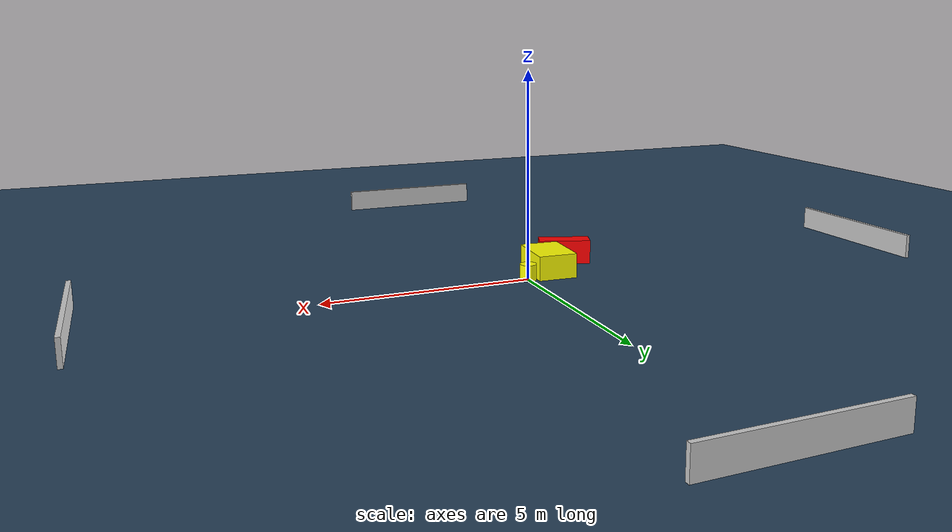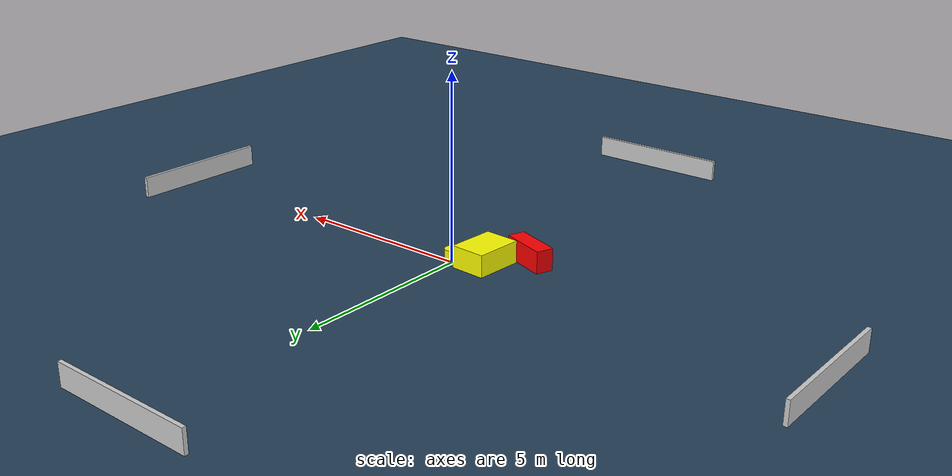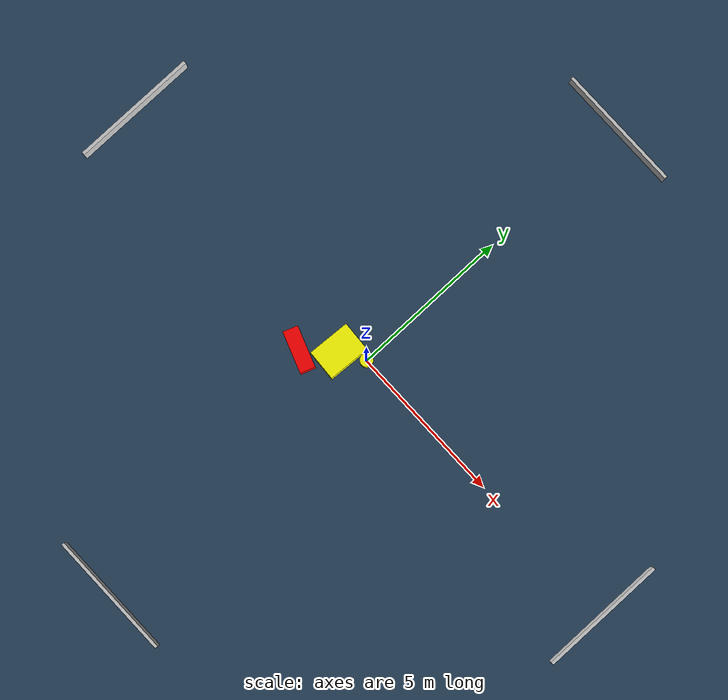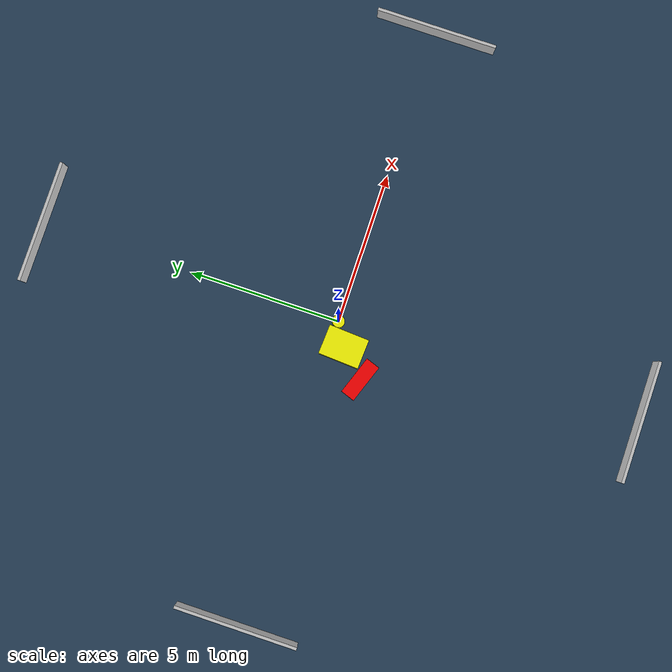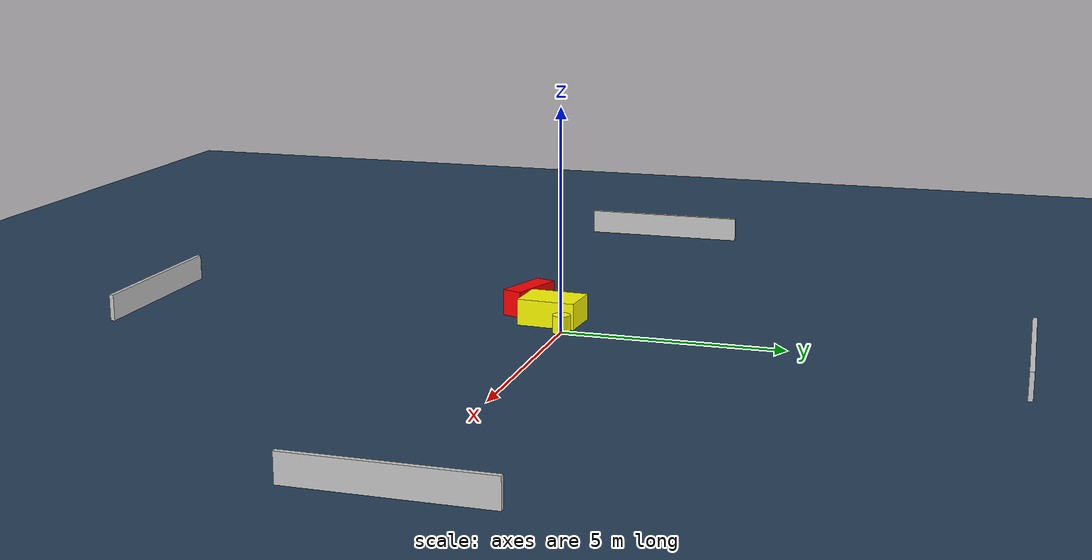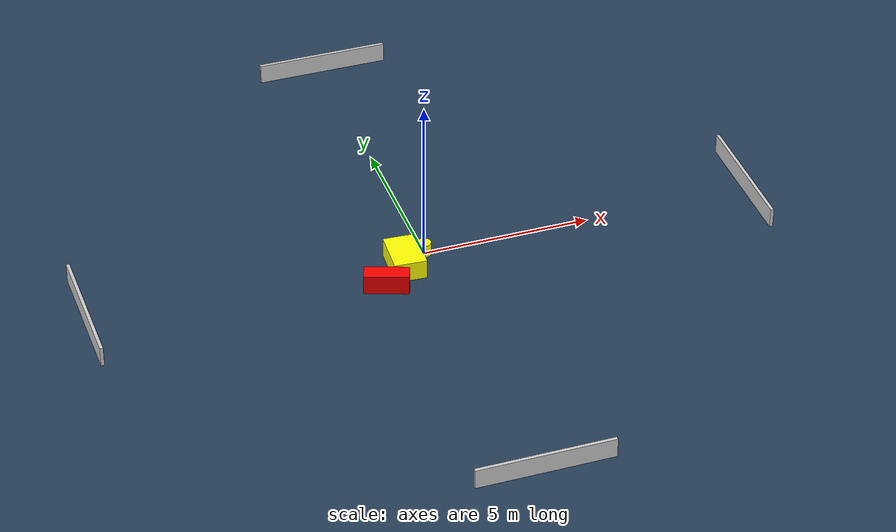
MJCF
<?xml version="1.0" ?>
<mujoco model="generated_environment">
  <option timestep="0.01" integrator="RK4" cone="elliptic"/>
  <default>
    <geom density="1"/>
  </default>
  <asset>
    <texture builtin="gradient" height="3072" name="skybox" rgb1="0.3 0.5 0.7" rgb2="0 0 0" type="skybox" width="512"/>
    <texture builtin="checker" height="300" name="groundplane" rgb1="0.2 0.3 0.4" rgb2="0.1 0.2 0.3" type="2d" width="300"/>
    <material name="groundplane" reflectance="0.2" texrepeat="5 5" texture="groundplane"/>
  </asset>
  <worldbody>
    <light dir="0 0 -1" directional="true" pos="0 0 1.5"/>
    <geom condim="3" friction="0.5 0.005 0.001" material="groundplane" name="floor" pos="0 0 0" size="0 0 0.05" type="plane"/>
    <body name="walls">
      <geom name="wall_1" condim="4" pos="-10.0 0.0 0.3" rgba="0.800000011920929 0.800000011920929 0.800000011920929 1.0" size="0.05 2.0 0.3" type="box"/>
      <geom name="wall_2" condim="4" pos="10.0 0.0 0.3" rgba="0.800000011920929 0.800000011920929 0.800000011920929 1.0" size="0.05 2.0 0.3" type="box"/>
      <geom name="wall_3" condim="4" pos="0.0 -10.0 0.3" rgba="0.800000011920929 0.800000011920929 0.800000011920929 1.0" size="2.0 0.05 0.3" type="box"/>
      <geom name="wall_4" condim="4" pos="0.0 10.0 0.3" rgba="0.800000011920929 0.800000011920929 0.800000011920929 1.0" size="2.0 0.05 0.3" type="box"/>
    </body>
    <body name="robot">
      <joint name="joint_x" type="slide" pos="0 0 0" axis="1 0 0"/>
      <joint name="joint_y" type="slide" pos="0 0 0" axis="0 1 0"/>
      <geom name="robot" type="cylinder" pos="0.0 0.0 0.2" size="0.2 0.2 0.0" mass="5.0" friction="1.0 0.005 0.0001" condim="4" rgba="1.0 1.0 0.0 1.0"/>
    </body>
    <body name="obstacle_1_movable">
      <geom name="obstacle_1_movable" condim="4" pos="-0.7232727185520453 -0.41729981754412343 0.3" euler="0 0 176.64014903271962" friction="0.0 0.005 0.001" rgba="1.0 1.0 0.0 1.0" size="0.4815097042449343 0.6648574723887282 0.3" type="box" mass="0.1"/>
      <joint type="free"/>
    </body>
    <body name="obstacle_2_static">
      <geom name="obstacle_2_static" condim="4" pos="-1.5397786238533608 -1.2355910632493292 0.3" euler="0 0 250.39170132084192" friction="0.0 0.005 0.001" rgba="1.0 0.0 0.0 1.0" size="0.23817030878655332 0.6511269000137319 0.3" type="box"/>
    </body>
  </worldbody>
  <actuator>
    <motor name="actuator_x" joint="joint_x" gear="1" ctrlrange="-1 1"/>
    <motor name="actuator_y" joint="joint_y" gear="1" ctrlrange="-1 1"/>
  </actuator>
</mujoco>
